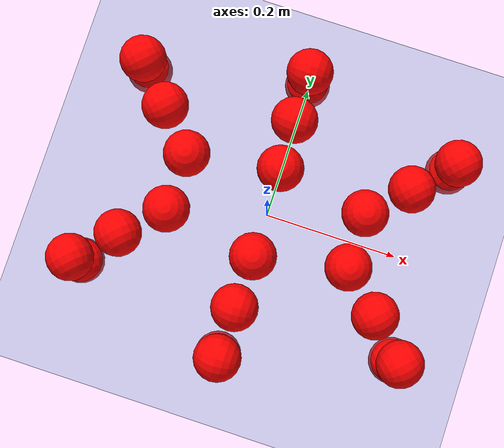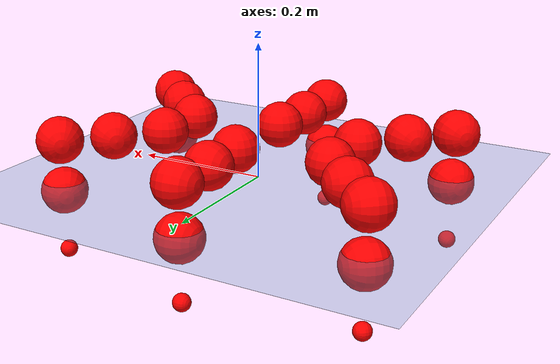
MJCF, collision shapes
<mujoco model="Golem">
  <compiler angle="radian" assetdir="assets" balanceinertia="true" inertiafromgeom="false"/>

  <option timestep="0.005" density="1.2" viscosity="2e-05"/>

  <size nkey="1"/>

  <visual>
    <quality shadowsize="8192"/>
    <map shadowclip="0.5"/>
  </visual>

  <default>
    <default class="/">
      <joint armature="0.01" damping="0.01" frictionloss="0.01"/>
      <geom contype="0" conaffinity="0" group="1" solref="-1000 -80"/>
      <site size="0.01 0.005 0.005" group="5"/>
      <general forcelimited="true" biastype="affine" gainprm="25" biasprm="0 -25 -0.5"/>
      <default class="visual">
        <geom type="mesh" group="2"/>
      </default>
      <default class="collision">
        <geom group="3"/>
      </default>
      <default class="foot">
        <geom size="0.01 0 0" condim="6" group="4" priority="1" solimp="0.015 1 0.01"/>
      </default>
      <default class="reward_collision_sphere">
        <geom group="5" rgba="1 0 0 1"/>
      </default>
    </default>
  </default>

  <asset>
    <texture type="skybox" colorspace="auto" name="//unnamed_texture_0" builtin="gradient" rgb1="0.95 0.95 0.95" rgb2="0.95 0.95 0.95" width="100" height="600"/>
    <texture type="2d" colorspace="auto" name="texplane" builtin="checker" rgb1="0.345 0.575 0.748" rgb2="0.345 0.575 0.748" markrgb="1 1 1" width="512" height="512"/>
    <material name="MatPlane" class="/" texture="texplane" texuniform="true" texrepeat="2 2" specular="0.9"/>
    <mesh name="body" class="/" file="body.stl" scale="0.001 0.001 0.001"/>
    <mesh name="coxa" class="/" file="coxa.stl" scale="0.001 0.001 0.001"/>
    <mesh name="femur" class="/" file="femur.stl" scale="0.001 0.001 0.001"/>
    <mesh name="tibia" class="/" file="tibia.stl" scale="0.001 0.001 0.001"/>
    <mesh name="tarsus" class="/" file="tarsus.stl" scale="0.001 0.001 0.001"/>
  </asset>

  <worldbody>
    <geom name="floor" class="/" size="100 100 0.125" type="plane" group="0" material="MatPlane"/>
    <light name="toplight_shadow" class="/" pos="0 0 5" dir="0.0990148 0.0990148 -0.990148" type="directional" ambient="0.04 0.04 0.04" diffuse="0.55 0.55 0.55" specular="0.12 0.12 0.12"/>
    <light name="toplight_fill" class="/" pos="0 0 5" dir="0.0990148 0.0990148 -0.990148" type="directional" castshadow="false" ambient="0.04 0.04 0.04" diffuse="0.3 0.3 0.3" specular="0.08 0.08 0.08"/>
    <body name="trunk" pos="-0.000431787 -7.90532e-05 -0.00212804" quat="1 0.000153922 0.000141622 0.000127482">
      <inertial pos="0.00010227 0.000924013 -0.00510372" quat="0.999993 -0.0028586 -0.00216337 0.00133019" mass="2.44911" diaginertia="0.00519485 0.00183375 0.0105058"/>
      <joint name="//unnamed_joint_0" type="free"/>
      <geom name="//unnamed_geom_1" class="/" pos="0 0 0.0644989" quat="1 0 0 0" type="mesh" rgba="0.9 0.9 0.9 1" mesh="body"/>
      <site name="imu" class="/" pos="0.116526 0.000582592 0.109126" size="0.0086325"/>
      <camera name="track" class="/" pos="0 -1.41817 0" quat="0.707107 0.707107 0 0" mode="trackcom"/>
      <camera name="ego_camera" class="/" pos="0.113473 0 0.100779" quat="-0.5 -0.5 0.5 0.5"/>
      <body name="coxa_RR" pos="-0.156967 -0.0605269 0.0658489" quat="0.381592 3.91655e-05 0.000353217 -0.924331">
        <inertial pos="-0.00242255 -0.000261082 0.00100079" quat="0.999962 0.00460456 -0.00549744 -0.0048804" mass="0.127165" diaginertia="0.00508791 0.00179703 0.0100625"/>
        <joint name="coxa_joint_RR" class="/" pos="0 0 0" axis="-0.000577086 -0.000430455 -1" range="-3.12881 3.12946" armature="0.00903054" damping="0.0105051" frictionloss="0.00938826"/>
        <geom name="//unnamed_geom_2" class="/" type="mesh" rgba="0.2 0.2 0.2 1" mesh="coxa"/>
        <geom name="//unnamed_geom_3" class="reward_collision_sphere" size="0.03453" pos="-0.0261861 0 0"/>
        <body name="femur_RR" pos="0.0509652 7.81232e-05 0.000728358" quat="0.500009 -0.500256 0.499942 0.499793">
          <inertial pos="-0.000616173 0.000566478 0.00203828" quat="1 1.40051e-05 -4.46751e-05 -3.50461e-05" mass="0.129545" diaginertia="0.0050893 0.00180095 0.0101621"/>
          <joint name="femur_joint_RR" class="/" pos="0 0 0" axis="0.00665893 -0.00351424 -0.999972" stiffness="0.00143075" range="-3.15991 3.14554" armature="0.00880229" damping="0.00382988" frictionloss="0.00907931"/>
          <geom name="//unnamed_geom_4" class="/" type="mesh" rgba="0.9 0.9 0.9 1" mesh="femur"/>
          <geom name="//unnamed_geom_5" class="reward_collision_sphere" size="0.03453"/>
          <body name="tibia_RR" pos="-0.000346703 -0.0764001 0.000455708" quat="-7.95321e-07 1 9.3721e-06 -1.35609e-05">
            <inertial pos="0.000460942 0.00202505 -0.00212179" quat="0.999959 -0.00246553 -0.00837276 -0.00243814" mass="0.128382" diaginertia="0.00498527 0.00180263 0.0103692"/>
            <joint name="tibia_joint_RR" class="/" pos="0 0 0" axis="0.00140601 -0.000169023 0.999999" range="-3.14077 3.12076" armature="0.00858128" damping="0.00224592" frictionloss="0.00866942"/>
            <geom name="//unnamed_geom_6" class="/" type="mesh" rgba="0.2 0.2 0.2 1" mesh="tibia"/>
            <geom name="//unnamed_geom_7" class="reward_collision_sphere" size="0.03453"/>
            <body name="tarsus_RR" pos="0.0756923 -0.00218446 -0.00208007" quat="0.999999 -0.000937985 0.000383581 0.000187369">
              <inertial pos="0.0505747 -0.00189179 -0.000710523" quat="0.501053 0.498897 0.497946 0.502093" mass="0.125448" diaginertia="0.00509007 0.00182782 0.0104353"/>
              <joint name="tarsus_joint_RR" class="/" pos="0 0 0" axis="0.00236564 0.00165481 0.999996" range="-3.13852 3.13036" armature="0.00848482" damping="0" frictionloss="0.00875379"/>
              <geom name="//unnamed_geom_8" class="/" type="mesh" rgba="0.9 0.9 0.9 1" mesh="tarsus"/>
              <geom name="foot_1" class="foot" size="0.00851133" pos="0.0977614 0 0" quat="0 -0.707107 0 0.707107"/>
              <geom name="//unnamed_geom_10" class="reward_collision_sphere" size="0.03453"/>
              <geom name="//unnamed_geom_11" class="reward_collision_sphere" size="0.0129487" pos="0.0938335 0 0"/>
              <site name="foot_1" class="foot" pos="0.0977614 0 0" quat="0 -0.707107 0 0.707107" size="0.0086325"/>
            </body>
          </body>
        </body>
      </body>
      <body name="coxa_RM" pos="0.0014871 -0.0942644 0.0643614" quat="0.707165 -5.48444e-05 0.000156877 -0.707049">
        <inertial pos="0.000314362 -0.000212006 -0.00216406" quat="0.999987 0.00366795 0.00357861 0.000563628" mass="0.12748" diaginertia="0.0049273 0.00172805 0.0101448"/>
        <joint name="coxa_joint_RM" class="/" pos="0 0 0" axis="0.00054512 0.000460289 -1" range="-3.13937 3.14214" armature="0.0088476" damping="0.0121044" frictionloss="0.00878966"/>
        <geom name="//unnamed_geom_12" class="/" type="mesh" rgba="0.2 0.2 0.2 1" mesh="coxa"/>
        <geom name="//unnamed_geom_13" class="reward_collision_sphere" size="0.03453" pos="-0.0261861 0 0"/>
        <body name="femur_RM" pos="0.051464 -0.0021159 -0.00121597" quat="0.500265 -0.500775 0.499692 0.499266">
          <inertial pos="0.000669003 -0.000625106 0.000155369" quat="0.999938 0.00287862 0.0105602 0.00225929" mass="0.127083" diaginertia="0.00518992 0.00180694 0.0103403"/>
          <joint name="femur_joint_RM" class="/" pos="0 0 0" axis="0.00312775 0.00372656 -0.999988" range="-3.17162 3.17151" armature="0.00963293" damping="0.0216613" frictionloss="0.00844271"/>
          <geom name="//unnamed_geom_14" class="/" type="mesh" rgba="0.9 0.9 0.9 1" mesh="femur"/>
          <geom name="//unnamed_geom_15" class="reward_collision_sphere" size="0.03453"/>
          <body name="tibia_RM" pos="-0.00186199 -0.0748981 -0.00082841" quat="-5.12565e-05 1 -0.000135747 -2.71808e-05">
            <inertial pos="0.00102964 0.000312714 -0.00186136" quat="0.999973 -0.00722946 0.00132923 0.000691756" mass="0.122912" diaginertia="0.00490786 0.00175459 0.0104398"/>
            <joint name="tibia_joint_RM" class="/" pos="0 0 0" axis="0.00397819 0.000635857 0.999992" stiffness="0.000147396" range="-3.16937 3.10644" armature="0.00797464" damping="0" frictionloss="0.00906608"/>
            <geom name="//unnamed_geom_16" class="/" type="mesh" rgba="0.2 0.2 0.2 1" mesh="tibia"/>
            <geom name="//unnamed_geom_17" class="reward_collision_sphere" size="0.03453"/>
            <body name="tarsus_RM" pos="0.077072 -0.00121918 0.00296322" quat="1 0.000129942 -4.16117e-05 0.000292112">
              <inertial pos="0.0532006 0.000202169 0.00100034" quat="0.498811 0.503537 0.496523 0.501102" mass="0.128651" diaginertia="0.00510839 0.00178917 0.0104905"/>
              <joint name="tarsus_joint_RM" class="/" pos="0 0 0" axis="0.00175554 0.000494252 0.999998" range="-3.12927 3.18869" armature="0.008753" damping="0" frictionloss="0.00886112"/>
              <geom name="//unnamed_geom_18" class="/" type="mesh" rgba="0.9 0.9 0.9 1" mesh="tarsus"/>
              <geom name="foot_2" class="foot" size="0.00803964" pos="0.0977614 0 0" quat="0 -0.707107 0 0.707107"/>
              <geom name="//unnamed_geom_20" class="reward_collision_sphere" size="0.03453"/>
              <geom name="//unnamed_geom_21" class="reward_collision_sphere" size="0.0129487" pos="0.0938335 0 0"/>
              <site name="foot_2" class="foot" pos="0.0977614 0 0" quat="0 -0.707107 0 0.707107" size="0.0086325"/>
            </body>
          </body>
        </body>
      </body>
      <body name="coxa_RF" pos="0.154849 -0.0592082 0.0642279" quat="0.923494 5.79881e-05 0.000361616 -0.383614">
        <inertial pos="0.002134 -0.00185865 0.000873053" quat="0.999992 0.0020288 0.00349792 -0.000389556" mass="0.128742" diaginertia="0.00517096 0.00177951 0.0104519"/>
        <joint name="coxa_joint_RF" class="/" pos="0 0 0" axis="0.00305351 0.00462647 -0.999985" range="-3.1422 3.14523" armature="0.00876357" damping="0" frictionloss="0.00900321"/>
        <geom name="//unnamed_geom_22" class="/" type="mesh" rgba="0.2 0.2 0.2 1" mesh="coxa"/>
        <geom name="//unnamed_geom_23" class="reward_collision_sphere" size="0.03453" pos="-0.0261861 0 0"/>
        <body name="femur_RF" pos="0.0522055 0.00220784 0.00200869" quat="0.499396 -0.500023 0.501075 0.499503">
          <inertial pos="7.94878e-05 -0.000464051 0.000753262" quat="1 -1.12501e-06 3.99703e-05 -0.000179202" mass="0.129621" diaginertia="0.00509525 0.00180775 0.0103981"/>
          <joint name="femur_joint_RF" class="/" pos="0 0 0" axis="0.000236159 0.00550066 -0.999985" range="-3.14685 3.13653" armature="0.00864952" damping="0.0126284" frictionloss="0.00849793"/>
          <geom name="//unnamed_geom_24" class="/" type="mesh" rgba="0.9 0.9 0.9 1" mesh="femur"/>
          <geom name="//unnamed_geom_25" class="reward_collision_sphere" size="0.03453"/>
          <body name="tibia_RF" pos="0.000882167 -0.0761864 0.000329746" quat="0.000265911 1 -0.000236603 -8.16162e-05">
            <inertial pos="-0.000728915 -0.00122349 -0.000401046" quat="0.999993 -0.000741619 -0.00179351 0.00329141" mass="0.123658" diaginertia="0.00491545 0.00172875 0.0103381"/>
            <joint name="tibia_joint_RF" class="/" pos="0 0 0" axis="0.000976517 -0.00306936 0.999995" stiffness="0.000328778" range="-3.12887 3.10586" armature="0.00862764" damping="0" frictionloss="0.00862204"/>
            <geom name="//unnamed_geom_26" class="/" type="mesh" rgba="0.2 0.2 0.2 1" mesh="tibia"/>
            <geom name="//unnamed_geom_27" class="reward_collision_sphere" size="0.03453"/>
            <body name="tarsus_RF" pos="0.0754521 -0.0025029 0.00129099" quat="1 0.000106491 -0.000298409 0.00014017">
              <inertial pos="0.0517309 0.000706163 -0.000920023" quat="0.500129 0.499905 0.500061 0.499905" mass="0.130414" diaginertia="0.00505164 0.00184955 0.010517"/>
              <joint name="tarsus_joint_RF" class="/" pos="0 0 0" axis="-3.5734e-05 -0.00222187 0.999998" range="-3.1414 3.15346" armature="0.00834274" damping="0" frictionloss="0.0086467"/>
              <geom name="//unnamed_geom_28" class="/" type="mesh" rgba="0.9 0.9 0.9 1" mesh="tarsus"/>
              <geom name="foot_3" class="foot" size="0.00846003" pos="0.0977614 0 0" quat="0 -0.707107 0 0.707107"/>
              <geom name="//unnamed_geom_30" class="reward_collision_sphere" size="0.03453"/>
              <geom name="//unnamed_geom_31" class="reward_collision_sphere" size="0.0129487" pos="0.0938335 0 0"/>
              <site name="foot_3" class="foot" pos="0.0977614 0 0" quat="0 -0.707107 0 0.707107" size="0.0086325"/>
            </body>
          </body>
        </body>
      </body>
      <body name="coxa_LR" pos="-0.155133 0.0623379 0.0630771" quat="0.382754 -0.000234484 0.000174997 0.92385">
        <inertial pos="5.49511e-05 0.000797866 -0.000749824" quat="0.999991 0.00391375 -0.001578 0.000563691" mass="0.126132" diaginertia="0.00491169 0.00176892 0.0100824"/>
        <joint name="coxa_joint_LR" class="/" pos="0 0 0" axis="0.00194705 0.000170188 -0.999998" range="-3.13278 3.14265" armature="0.00827094" damping="0.0147697" frictionloss="0.00915804"/>
        <geom name="//unnamed_geom_32" class="/" type="mesh" rgba="0.2 0.2 0.2 1" mesh="coxa"/>
        <geom name="//unnamed_geom_33" class="reward_collision_sphere" size="0.03453" pos="-0.0261861 0 0"/>
        <body name="femur_LR" pos="0.0515377 -0.00360961 -0.000523177" quat="0.500175 -0.500126 0.499716 0.499982">
          <inertial pos="-0.000810388 0.000505855 -0.00253658" quat="0.999999 -0.00107309 -0.000729841 -0.000505658" mass="0.12513" diaginertia="0.0049416 0.00175065 0.0101502"/>
          <joint name="femur_joint_LR" class="/" pos="0 0 0" axis="-0.00786603 0.00901132 0.999928" stiffness="0.000736782" range="-3.14251 3.13894" armature="0.00876634" damping="0.00777984" frictionloss="0.00861533"/>
          <geom name="//unnamed_geom_34" class="/" type="mesh" rgba="0.9 0.9 0.9 1" mesh="femur"/>
          <geom name="//unnamed_geom_35" class="reward_collision_sphere" size="0.03453"/>
          <body name="tibia_LR" pos="-0.000307953 -0.0770506 -0.00180718" quat="-6.21579e-05 1 0.000124748 -0.000199318">
            <inertial pos="-0.000513825 0.00197542 -0.000617228" quat="0.999992 0.000266534 0.000215733 0.00402485" mass="0.128509" diaginertia="0.00493968 0.00180038 0.0106214"/>
            <joint name="tibia_joint_LR" class="/" pos="0 0 0" axis="0.00125918 -0.0114977 -0.999933" range="-3.11087 3.08848" armature="0.00971266" damping="0" frictionloss="0.00892085"/>
            <geom name="//unnamed_geom_36" class="/" type="mesh" rgba="0.2 0.2 0.2 1" mesh="tibia"/>
            <geom name="//unnamed_geom_37" class="reward_collision_sphere" size="0.03453"/>
            <body name="tarsus_LR" pos="0.077952 0.00128657 0.00178611" quat="1 0.000401301 -0.000125892 -0.000263013">
              <inertial pos="0.0551021 0.00042671 -0.00235971" quat="0.500507 0.499831 0.499814 0.499848" mass="0.129181" diaginertia="0.00509816 0.00180074 0.0103422"/>
              <joint name="tarsus_joint_LR" class="/" pos="0 0 0" axis="-0.000528652 -7.83657e-05 -1" range="-3.13511 3.14063" armature="0.00818849" damping="0.0100829" frictionloss="0.0086496"/>
              <geom name="//unnamed_geom_38" class="/" type="mesh" rgba="0.9 0.9 0.9 1" mesh="tarsus"/>
              <geom name="foot_4" class="foot" size="0.00858855" pos="0.0977614 0 0" quat="0.707107 0 -0.707107 0"/>
              <geom name="//unnamed_geom_40" class="reward_collision_sphere" size="0.03453"/>
              <geom name="//unnamed_geom_41" class="reward_collision_sphere" size="0.0129487" pos="0.0938335 0 0"/>
              <site name="foot_4" class="foot" pos="0.0977614 0 0" quat="0.707107 0 -0.707107 0" size="0.0086325"/>
            </body>
          </body>
        </body>
      </body>
      <body name="coxa_LM" pos="-0.000416805 0.0913417 0.0649221" quat="0.706946 0.000289401 -0.000104784 0.707267">
        <inertial pos="0.000345446 -0.00206127 0.00261733" quat="0.999997 0.00128081 0.00020824 0.0018995" mass="0.13022" diaginertia="0.0051782 0.00181011 0.0105552"/>
        <joint name="coxa_joint_LM" class="/" pos="0 0 0" axis="-0.00550882 0.00579144 -0.999968" range="-3.14925 3.15827" armature="0.00764254" damping="0.00589014" frictionloss="0.00857214"/>
        <geom name="//unnamed_geom_42" class="/" type="mesh" rgba="0.2 0.2 0.2 1" mesh="coxa"/>
        <geom name="//unnamed_geom_43" class="reward_collision_sphere" size="0.03453" pos="-0.0261861 0 0"/>
        <body name="femur_LM" pos="0.0476118 0.00247807 -0.00104131" quat="0.499986 -0.499961 0.499956 0.500098">
          <inertial pos="-0.00240046 1.98459e-06 -0.000512471" quat="0.999996 0.00252591 0.000234496 0.000911637" mass="0.124053" diaginertia="0.00499435 0.00174327 0.0100011"/>
          <joint name="femur_joint_LM" class="/" pos="0 0 0" axis="0.00409895 -0.0114937 0.999926" range="-3.13954 3.13624" armature="0.00879067" damping="0.00750095" frictionloss="0.00919956"/>
          <geom name="//unnamed_geom_44" class="/" type="mesh" rgba="0.9 0.9 0.9 1" mesh="femur"/>
          <geom name="//unnamed_geom_45" class="reward_collision_sphere" size="0.03453"/>
          <body name="tibia_LM" pos="-0.000511597 -0.0746805 0.000451019" quat="-0.000208005 1 0.000141023 0.000446352">
            <inertial pos="-0.000907965 0.000138759 0.00107224" quat="0.999978 0.00364466 -0.00388961 0.00390454" mass="0.124786" diaginertia="0.00501043 0.00178351 0.010167"/>
            <joint name="tibia_joint_LM" class="/" pos="0 0 0" axis="-0.00285691 -0.00357979 -0.99999" range="-3.13521 3.17686" armature="0.00825614" damping="0.00411896" frictionloss="0.00834357"/>
            <geom name="//unnamed_geom_46" class="/" type="mesh" rgba="0.2 0.2 0.2 1" mesh="tibia"/>
            <geom name="//unnamed_geom_47" class="reward_collision_sphere" size="0.03453"/>
            <body name="tarsus_LM" pos="0.0771963 -0.00148639 0.000143946" quat="1 -8.72445e-06 3.2018e-07 1.43593e-07">
              <inertial pos="0.0546406 0.00147795 0.00105436" quat="0.500082 0.499985 0.499976 0.499957" mass="0.128089" diaginertia="0.00513656 0.0018132 0.0104486"/>
              <joint name="tarsus_joint_LM" class="/" pos="0 0 0" axis="0.00112718 -0.000326957 -0.999999" range="-3.14949 3.13256" armature="0.00856788" damping="0" frictionloss="0.00905887"/>
              <geom name="//unnamed_geom_48" class="/" type="mesh" rgba="0.9 0.9 0.9 1" mesh="tarsus"/>
              <geom name="foot_5" class="foot" size="0.00877245" pos="0.0977614 0 0" quat="0.707107 0 -0.707107 0"/>
              <geom name="//unnamed_geom_50" class="reward_collision_sphere" size="0.03453"/>
              <geom name="//unnamed_geom_51" class="reward_collision_sphere" size="0.0129487" pos="0.0938335 0 0"/>
              <site name="foot_5" class="foot" pos="0.0977614 0 0" quat="0.707107 0 -0.707107 0" size="0.0086325"/>
            </body>
          </body>
        </body>
      </body>
      <body name="coxa_LF" pos="0.154223 0.0596724 0.064001" quat="0.92385 -0.000333043 -0.000289749 0.382755">
        <inertial pos="0.00145505 -0.000617929 -0.000817972" quat="0.999942 0.00338065 -0.00496405 -0.00896889" mass="0.129172" diaginertia="0.00521918 0.00177068 0.0103957"/>
        <joint name="coxa_joint_LF" class="/" pos="0 0 0" axis="-0.0013915 -0.00304795 -0.999994" range="-3.14047 3.10052" armature="0.00872968" damping="0.0113374" frictionloss="0.00840291"/>
        <geom name="//unnamed_geom_52" class="/" type="mesh" rgba="0.2 0.2 0.2 1" mesh="coxa"/>
        <geom name="//unnamed_geom_53" class="reward_collision_sphere" size="0.03453" pos="-0.0261861 0 0"/>
        <body name="femur_LF" pos="0.0501596 0.000402308 -0.00145797" quat="0.499677 -0.500421 0.499797 0.500105">
          <inertial pos="-0.00161026 0.000666527 -4.65484e-07" quat="0.999992 -0.00260285 0.00248744 -0.00198712" mass="0.130469" diaginertia="0.0049744 0.00180682 0.0103852"/>
          <joint name="femur_joint_LF" class="/" pos="0 0 0" axis="-0.00594888 0.0101492 0.999931" range="-3.17914 3.14961" armature="0.00856996" damping="0" frictionloss="0.00865478"/>
          <geom name="//unnamed_geom_54" class="/" type="mesh" rgba="0.9 0.9 0.9 1" mesh="femur"/>
          <geom name="//unnamed_geom_55" class="reward_collision_sphere" size="0.03453"/>
          <body name="tibia_LF" pos="-0.000951152 -0.0777294 0.00265829" quat="0.000273898 1 -3.80411e-05 -0.000388356">
            <inertial pos="-0.00154448 0.000337562 -4.48858e-05" quat="0.999922 0.00317031 0.0119716 -0.00170188" mass="0.132558" diaginertia="0.00503658 0.00180068 0.0105443"/>
            <joint name="tibia_joint_LF" class="/" pos="0 0 0" axis="2.2921e-06 1.49775e-05 -1" range="-3.14231 3.12541" armature="0.00874194" damping="0.00286711" frictionloss="0.00877612"/>
            <geom name="//unnamed_geom_56" class="/" type="mesh" rgba="0.2 0.2 0.2 1" mesh="tibia"/>
            <geom name="//unnamed_geom_57" class="reward_collision_sphere" size="0.03453"/>
            <body name="tarsus_LF" pos="0.0774684 -0.00147586 -6.87001e-05" quat="1 1.24563e-05 5.73775e-05 2.80517e-05">
              <inertial pos="0.0526131 0.00118347 -0.00128398" quat="0.502934 0.500336 0.499977 0.496734" mass="0.122135" diaginertia="0.00493061 0.00173922 0.0100279"/>
              <joint name="tarsus_joint_LF" class="/" pos="0 0 0" axis="-0.000217859 0.00176271 -0.999998" range="-3.12004 3.13269" armature="0.00882632" damping="0.0198666" frictionloss="0.00873874"/>
              <geom name="//unnamed_geom_58" class="/" type="mesh" rgba="0.9 0.9 0.9 1" mesh="tarsus"/>
              <geom name="foot_6" class="foot" size="0.00885759" pos="0.0977614 0 0" quat="0.707107 0 -0.707107 0"/>
              <geom name="//unnamed_geom_60" class="reward_collision_sphere" size="0.03453"/>
              <geom name="//unnamed_geom_61" class="reward_collision_sphere" size="0.0129487" pos="0.0938335 0 0"/>
              <site name="foot_6" class="foot" pos="0.0977614 0 0" quat="0.707107 0 -0.707107 0" size="0.0086325"/>
            </body>
          </body>
        </body>
      </body>
    </body>
  </worldbody>

  <contact>
    <pair class="/" geom1="floor" geom2="foot_1" name="//unnamed_contact_0"/>
    <pair class="/" geom1="floor" geom2="foot_2" name="//unnamed_contact_1"/>
    <pair class="/" geom1="floor" geom2="foot_3" name="//unnamed_contact_2"/>
    <pair class="/" geom1="floor" geom2="foot_4" name="//unnamed_contact_3"/>
    <pair class="/" geom1="floor" geom2="foot_5" name="//unnamed_contact_4"/>
    <pair class="/" geom1="floor" geom2="foot_6" name="//unnamed_contact_5"/>
  </contact>

  <actuator>
    <general name="coxa_joint_RR" class="/" joint="coxa_joint_RR" forcerange="-6.17299 6.17299" gainprm="21.1592" biasprm="0 -21.1592 -0.456334"/>
    <general name="femur_joint_RR" class="/" joint="femur_joint_RR" forcerange="-6.38979 6.38979" gainprm="21.1592" biasprm="0 -21.1592 -0.456334"/>
    <general name="tibia_joint_RR" class="/" joint="tibia_joint_RR" forcerange="-5.88415 5.88415" gainprm="21.1592" biasprm="0 -21.1592 -0.456334"/>
    <general name="tarsus_joint_RR" class="/" joint="tarsus_joint_RR" forcerange="-6.09626 6.09626" gainprm="21.1592" biasprm="0 -21.1592 -0.456334"/>
    <general name="coxa_joint_RM" class="/" joint="coxa_joint_RM" forcerange="-6.89436 6.89436" gainprm="21.1592" biasprm="0 -21.1592 -0.456334"/>
    <general name="femur_joint_RM" class="/" joint="femur_joint_RM" forcerange="-6.17829 6.17829" gainprm="21.1592" biasprm="0 -21.1592 -0.456334"/>
    <general name="tibia_joint_RM" class="/" joint="tibia_joint_RM" forcerange="-6.11245 6.11245" gainprm="21.1592" biasprm="0 -21.1592 -0.456334"/>
    <general name="tarsus_joint_RM" class="/" joint="tarsus_joint_RM" forcerange="-5.87842 5.87842" gainprm="21.1592" biasprm="0 -21.1592 -0.456334"/>
    <general name="coxa_joint_RF" class="/" joint="coxa_joint_RF" forcerange="-6.65443 6.65443" gainprm="21.1592" biasprm="0 -21.1592 -0.456334"/>
    <general name="femur_joint_RF" class="/" joint="femur_joint_RF" forcerange="-6.33163 6.33163" gainprm="21.1592" biasprm="0 -21.1592 -0.456334"/>
    <general name="tibia_joint_RF" class="/" joint="tibia_joint_RF" forcerange="-6.31451 6.31451" gainprm="21.1592" biasprm="0 -21.1592 -0.456334"/>
    <general name="tarsus_joint_RF" class="/" joint="tarsus_joint_RF" forcerange="-6.3161 6.3161" gainprm="21.1592" biasprm="0 -21.1592 -0.456334"/>
    <general name="coxa_joint_LR" class="/" joint="coxa_joint_LR" forcerange="-6.80379 6.80379" gainprm="21.1592" biasprm="0 -21.1592 -0.456334"/>
    <general name="femur_joint_LR" class="/" joint="femur_joint_LR" forcerange="-6.31937 6.31937" gainprm="21.1592" biasprm="0 -21.1592 -0.456334"/>
    <general name="tibia_joint_LR" class="/" joint="tibia_joint_LR" forcerange="-6.54671 6.54671" gainprm="21.1592" biasprm="0 -21.1592 -0.456334"/>
    <general name="tarsus_joint_LR" class="/" joint="tarsus_joint_LR" forcerange="-6.84099 6.84099" gainprm="21.1592" biasprm="0 -21.1592 -0.456334"/>
    <general name="coxa_joint_LM" class="/" joint="coxa_joint_LM" forcerange="-5.90533 5.90533" gainprm="21.1592" biasprm="0 -21.1592 -0.456334"/>
    <general name="femur_joint_LM" class="/" joint="femur_joint_LM" forcerange="-6.05719 6.05719" gainprm="21.1592" biasprm="0 -21.1592 -0.456334"/>
    <general name="tibia_joint_LM" class="/" joint="tibia_joint_LM" forcerange="-6.77427 6.77427" gainprm="21.1592" biasprm="0 -21.1592 -0.456334"/>
    <general name="tarsus_joint_LM" class="/" joint="tarsus_joint_LM" forcerange="-6.88763 6.88763" gainprm="21.1592" biasprm="0 -21.1592 -0.456334"/>
    <general name="coxa_joint_LF" class="/" joint="coxa_joint_LF" forcerange="-6.08408 6.08408" gainprm="21.1592" biasprm="0 -21.1592 -0.456334"/>
    <general name="femur_joint_LF" class="/" joint="femur_joint_LF" forcerange="-6.11836 6.11836" gainprm="21.1592" biasprm="0 -21.1592 -0.456334"/>
    <general name="tibia_joint_LF" class="/" joint="tibia_joint_LF" forcerange="-6.54485 6.54485" gainprm="21.1592" biasprm="0 -21.1592 -0.456334"/>
    <general name="tarsus_joint_LF" class="/" joint="tarsus_joint_LF" forcerange="-6.42296 6.42296" gainprm="21.1592" biasprm="0 -21.1592 -0.456334"/>
  </actuator>

  <sensor>
    <gyro site="imu" name="imu_angular_velocity"/>
    <velocimeter site="imu" name="imu_linear_velocity"/>
    <framelinvel objtype="site" objname="foot_1" name="foot_1_global_linear_velocity"/>
    <framelinvel objtype="site" objname="foot_2" name="foot_2_global_linear_velocity"/>
    <framelinvel objtype="site" objname="foot_3" name="foot_3_global_linear_velocity"/>
    <framelinvel objtype="site" objname="foot_4" name="foot_4_global_linear_velocity"/>
    <framelinvel objtype="site" objname="foot_5" name="foot_5_global_linear_velocity"/>
    <framelinvel objtype="site" objname="foot_6" name="foot_6_global_linear_velocity"/>
  </sensor>

  <keyframe>
    <key name="home" qpos="0 0 0.1457 1 0 0 0 0 0 0 0 0 0 0 0 0 0 0 0 0 0 0 0 0 0 0 0 0 0 0 0"/>
  </keyframe>
</mujoco>
